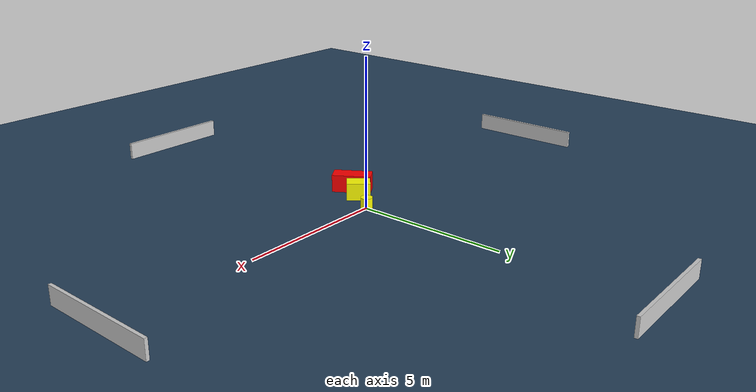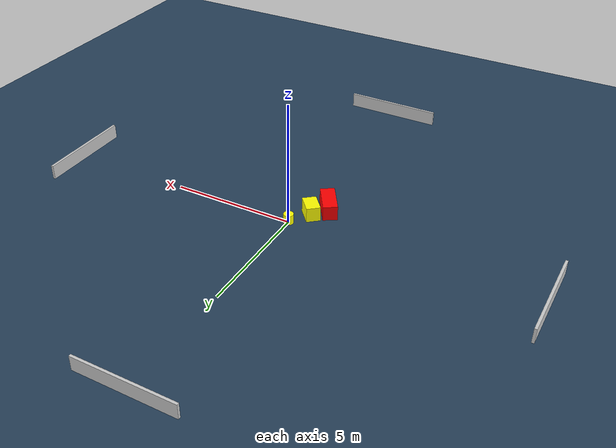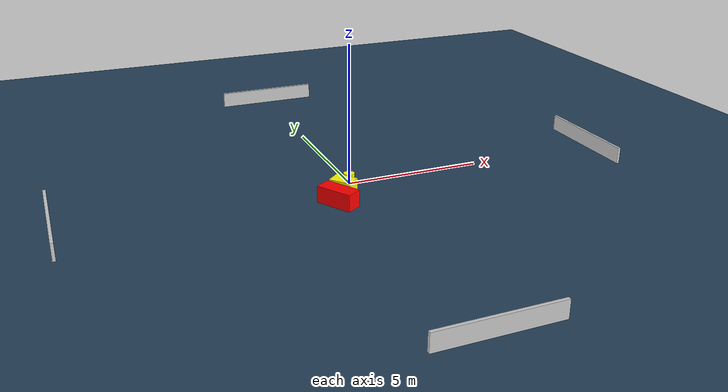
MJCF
<?xml version="1.0" ?>
<mujoco model="generated_environment">
  <option timestep="0.01" integrator="RK4" cone="elliptic"/>
  <default>
    <geom density="1"/>
  </default>
  <asset>
    <texture builtin="gradient" height="3072" name="skybox" rgb1="0.3 0.5 0.7" rgb2="0 0 0" type="skybox" width="512"/>
    <texture builtin="checker" height="300" name="groundplane" rgb1="0.2 0.3 0.4" rgb2="0.1 0.2 0.3" type="2d" width="300"/>
    <material name="groundplane" reflectance="0.2" texrepeat="5 5" texture="groundplane"/>
  </asset>
  <worldbody>
    <light dir="0 0 -1" directional="true" pos="0 0 1.5"/>
    <geom condim="3" friction="0.5 0.005 0.001" material="groundplane" name="floor" pos="0 0 0" size="0 0 0.05" type="plane"/>
    <body name="walls">
      <geom name="wall_1" condim="4" pos="-10.0 0.0 0.3" rgba="0.800000011920929 0.800000011920929 0.800000011920929 1.0" size="0.05 2.0 0.3" type="box"/>
      <geom name="wall_2" condim="4" pos="10.0 0.0 0.3" rgba="0.800000011920929 0.800000011920929 0.800000011920929 1.0" size="0.05 2.0 0.3" type="box"/>
      <geom name="wall_3" condim="4" pos="0.0 -10.0 0.3" rgba="0.800000011920929 0.800000011920929 0.800000011920929 1.0" size="2.0 0.05 0.3" type="box"/>
      <geom name="wall_4" condim="4" pos="0.0 10.0 0.3" rgba="0.800000011920929 0.800000011920929 0.800000011920929 1.0" size="2.0 0.05 0.3" type="box"/>
    </body>
    <body name="robot">
      <joint name="joint_x" type="slide" pos="0 0 0" axis="1 0 0"/>
      <joint name="joint_y" type="slide" pos="0 0 0" axis="0 1 0"/>
      <geom name="robot" type="cylinder" pos="0.0 0.0 0.2" size="0.2 0.2 0.0" mass="5.0" friction="1.0 0.005 0.0001" condim="4" rgba="1.0 1.0 0.0 1.0"/>
    </body>
    <body name="obstacle_1_movable">
      <geom name="obstacle_1_movable" condim="4" pos="-0.545016542701122 -0.8159263716213376 0.3" euler="0 0 310.64346401846467" friction="0.0 0.005 0.001" rgba="1.0 1.0 0.0 1.0" size="0.39706319472133667 0.2795226867417612 0.3" type="box" mass="0.1"/>
      <joint type="free"/>
    </body>
    <body name="obstacle_2_static">
      <geom name="obstacle_2_static" condim="4" pos="-0.97477386025717 -1.456634493324345 0.3" euler="0 0 212.0643392977135" friction="0.0 0.005 0.001" rgba="1.0 0.0 0.0 1.0" size="0.28876663788550117 0.6627753237490097 0.3" type="box"/>
    </body>
  </worldbody>
  <actuator>
    <motor name="actuator_x" joint="joint_x" gear="1" ctrlrange="-1 1"/>
    <motor name="actuator_y" joint="joint_y" gear="1" ctrlrange="-1 1"/>
  </actuator>
</mujoco>
